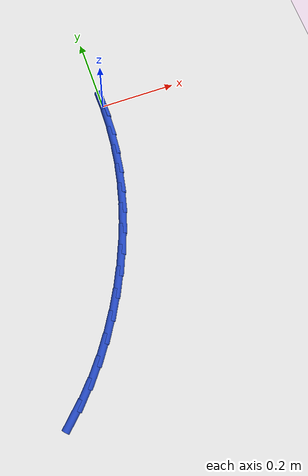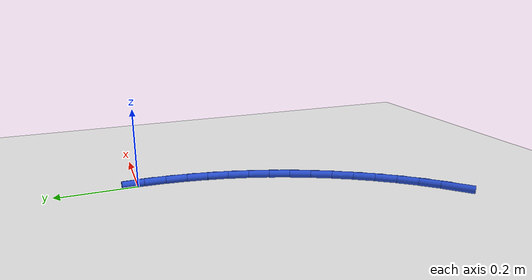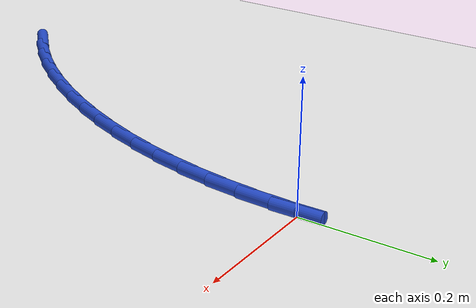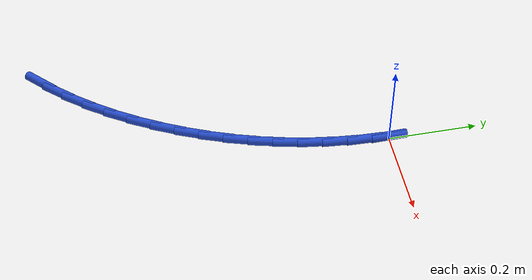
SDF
<sdf version="1.6">
 <world name="default">
  <model name="ground_plane">
   <static>1</static>
   <link name="link">
    <collision name="collision">
     <geometry><plane><normal>0 0 1</normal><size>100 100</size></plane></geometry>
     <surface><friction><ode><mu>100</mu><mu2>50</mu2></ode></friction></surface>
    </collision>
    <visual name="visual">
     <cast_shadows>0</cast_shadows>
     <geometry><plane><normal>0 0 1</normal><size>100 100</size></plane></geometry>
     <material>
      <script><uri>file://media/materials/scripts/gazebo.material</uri><name>Gazebo/WhiteGlow</name></script>
     </material>
    </visual>
   </link>
  </model>
  <model name="line">
   <link name="link_0">
    <pose>-5.898059818321144e-17 -8.326672684688674e-17 0.01 0 1.57 -1.5503836142528844</pose>
    <collision name="collision">
     <geometry><cylinder><radius>0.01</radius><length>0.08</length></cylinder></geometry>
    </collision>
    <visual name="visual">
     <material>
      <script><name>Gazebo/Blue</name><uri>file://media/materials/scripts/gazebo.material</uri></script>
     </material>
     <geometry><cylinder><radius>0.01</radius><length>0.08</length></cylinder></geometry>
    </visual>
   </link>
   <link name="link_125">
    <pose>-0.316304799153146 -0.7353021153157414 0.01 0 1.57 0.760080603082856</pose>
    <collision name="collision">
     <geometry><cylinder><radius>0.01</radius><length>0.08</length></cylinder></geometry>
    </collision>
    <visual name="visual">
     <material>
      <script><name>Gazebo/Blue</name><uri>file://media/materials/scripts/gazebo.material</uri></script>
     </material>
     <geometry><cylinder><radius>0.01</radius><length>0.08</length></cylinder></geometry>
    </visual>
   </link>
   <link name="link_126">
    <pose>-0.2775654530440289 -0.6984763035122432 0.01 0 1.57 0.8332503319098896</pose>
    <collision name="collision">
     <geometry><cylinder><radius>0.01</radius><length>0.08</length></cylinder></geometry>
    </collision>
    <visual name="visual">
     <material>
      <script><name>Gazebo/Blue</name><uri>file://media/materials/scripts/gazebo.material</uri></script>
     </material>
     <geometry><cylinder><radius>0.01</radius><length>0.08</length></cylinder></geometry>
    </visual>
   </link>
   <link name="link_127">
    <pose>-0.2409525478106052 -0.6581803300248303 0.01 0 1.57 0.8993696789368764</pose>
    <collision name="collision">
     <geometry><cylinder><radius>0.01</radius><length>0.08</length></cylinder></geometry>
    </collision>
    <visual name="visual">
     <material>
      <script><name>Gazebo/Blue</name><uri>file://media/materials/scripts/gazebo.material</uri></script>
     </material>
     <geometry><cylinder><radius>0.01</radius><length>0.08</length></cylinder></geometry>
    </visual>
   </link>
   <link name="link_128">
    <pose>-0.20657696633489833 -0.6149176899052944 0.01 0 1.57 0.9597870451720748</pose>
    <collision name="collision">
     <geometry><cylinder><radius>0.01</radius><length>0.08</length></cylinder></geometry>
    </collision>
    <visual name="visual">
     <material>
      <script><name>Gazebo/Blue</name><uri>file://media/materials/scripts/gazebo.material</uri></script>
     </material>
     <geometry><cylinder><radius>0.01</radius><length>0.08</length></cylinder></geometry>
    </visual>
   </link>
   <link name="link_129">
    <pose>-0.1745495914989323 -0.5691918782054272 0.01 0 1.57 1.015750876331066</pose>
    <collision name="collision">
     <geometry><cylinder><radius>0.01</radius><length>0.08</length></cylinder></geometry>
    </collision>
    <visual name="visual">
     <material>
      <script><name>Gazebo/Blue</name><uri>file://media/materials/scripts/gazebo.material</uri></script>
     </material>
     <geometry><cylinder><radius>0.01</radius><length>0.08</length></cylinder></geometry>
    </visual>
   </link>
   <link name="link_130">
    <pose>-0.14498130618473107 -0.5215063899770214 0.01 0 1.57 1.0684157675643593</pose>
    <collision name="collision">
     <geometry><cylinder><radius>0.01</radius><length>0.08</length></cylinder></geometry>
    </collision>
    <visual name="visual">
     <material>
      <script><name>Gazebo/Blue</name><uri>file://media/materials/scripts/gazebo.material</uri></script>
     </material>
     <geometry><cylinder><radius>0.01</radius><length>0.08</length></cylinder></geometry>
    </visual>
   </link>
   <link name="link_131">
    <pose>-0.11798299327431853 -0.47236472027186804 0.01 0 1.57 1.1188750601844524</pose>
    <collision name="collision">
     <geometry><cylinder><radius>0.01</radius><length>0.08</length></cylinder></geometry>
    </collision>
    <visual name="visual">
     <material>
      <script><name>Gazebo/Blue</name><uri>file://media/materials/scripts/gazebo.material</uri></script>
     </material>
     <geometry><cylinder><radius>0.01</radius><length>0.08</length></cylinder></geometry>
    </visual>
   </link>
   <link name="link_132">
    <pose>-0.09366533880488828 -0.4222693155290426 0.01 0 1.57 1.1688058360264115</pose>
    <collision name="collision">
     <geometry><cylinder><radius>0.01</radius><length>0.08</length></cylinder></geometry>
    </collision>
    <visual name="visual">
     <material>
      <script><name>Gazebo/Blue</name><uri>file://media/materials/scripts/gazebo.material</uri></script>
     </material>
     <geometry><cylinder><radius>0.01</radius><length>0.08</length></cylinder></geometry>
    </visual>
   </link>
   <link name="link_133">
    <pose>-0.07210992231374634 -0.3715675688605979 0.01 0 1.57 1.2198815580899487</pose>
    <collision name="collision">
     <geometry><cylinder><radius>0.01</radius><length>0.08</length></cylinder></geometry>
    </collision>
    <visual name="visual">
     <material>
      <script><name>Gazebo/Blue</name><uri>file://media/materials/scripts/gazebo.material</uri></script>
     </material>
     <geometry><cylinder><radius>0.01</radius><length>0.08</length></cylinder></geometry>
    </visual>
   </link>
   <link name="link_134">
    <pose>-0.053338699706028 -0.32028925214026654 0.01 0 1.57 1.272047015148839</pose>
    <collision name="collision">
     <geometry><cylinder><radius>0.01</radius><length>0.08</length></cylinder></geometry>
    </collision>
    <visual name="visual">
     <material>
      <script><name>Gazebo/Blue</name><uri>file://media/materials/scripts/gazebo.material</uri></script>
     </material>
     <geometry><cylinder><radius>0.01</radius><length>0.08</length></cylinder></geometry>
    </visual>
   </link>
   <link name="link_135">
    <pose>-0.03736632391723992 -0.26842523356932196 0.01 0 1.57 1.3250254824682626</pose>
    <collision name="collision">
     <geometry><cylinder><radius>0.01</radius><length>0.08</length></cylinder></geometry>
    </collision>
    <visual name="visual">
     <material>
      <script><name>Gazebo/Blue</name><uri>file://media/materials/scripts/gazebo.material</uri></script>
     </material>
     <geometry><cylinder><radius>0.01</radius><length>0.08</length></cylinder></geometry>
    </visual>
   </link>
   <link name="link_136">
    <pose>-0.02420744788288952 -0.21596638134903923 0.01 0 1.57 1.3785131021300325</pose>
    <collision name="collision">
     <geometry><cylinder><radius>0.01</radius><length>0.08</length></cylinder></geometry>
    </collision>
    <visual name="visual">
     <material>
      <script><name>Gazebo/Blue</name><uri>file://media/materials/scripts/gazebo.material</uri></script>
     </material>
     <geometry><cylinder><radius>0.01</radius><length>0.08</length></cylinder></geometry>
    </visual>
   </link>
   <link name="link_137">
    <pose>-0.013876724538483425 -0.16290356368069198 0.01 0 1.57 1.4321884756937557</pose>
    <collision name="collision">
     <geometry><cylinder><radius>0.01</radius><length>0.08</length></cylinder></geometry>
    </collision>
    <visual name="visual">
     <material>
      <script><name>Gazebo/Blue</name><uri>file://media/materials/scripts/gazebo.material</uri></script>
     </material>
     <geometry><cylinder><radius>0.01</radius><length>0.08</length></cylinder></geometry>
    </visual>
   </link>
   <link name="link_138">
    <pose>-0.006388806819528543 -0.1092276487655538 0.01 0 1.57 1.485723749968641</pose>
    <collision name="collision">
     <geometry><cylinder><radius>0.01</radius><length>0.08</length></cylinder></geometry>
    </collision>
    <visual name="visual">
     <material>
      <script><name>Gazebo/Blue</name><uri>file://media/materials/scripts/gazebo.material</uri></script>
     </material>
     <geometry><cylinder><radius>0.01</radius><length>0.08</length></cylinder></geometry>
    </visual>
   </link>
   <link name="link_139">
    <pose>-0.0017583476615317863 -0.05492950480489881 0.01 0 1.57 1.538796267047616</pose>
    <collision name="collision">
     <geometry><cylinder><radius>0.01</radius><length>0.08</length></cylinder></geometry>
    </collision>
    <visual name="visual">
     <material>
      <script><name>Gazebo/Blue</name><uri>file://media/materials/scripts/gazebo.material</uri></script>
     </material>
     <geometry><cylinder><radius>0.01</radius><length>0.08</length></cylinder></geometry>
    </visual>
   </link>
   <link name="link_140">
    <pose>-3.8163916471489756e-17 5.551115123125783e-17 0.01 0 1.57 -1.550492893962813</pose>
    <collision name="collision">
     <geometry><cylinder><radius>0.01</radius><length>0.08</length></cylinder></geometry>
    </collision>
    <visual name="visual">
     <material>
      <script><name>Gazebo/Blue</name><uri>file://media/materials/scripts/gazebo.material</uri></script>
     </material>
     <geometry><cylinder><radius>0.01</radius><length>0.08</length></cylinder></geometry>
    </visual>
   </link>
  </model>
 </world>
</sdf>
